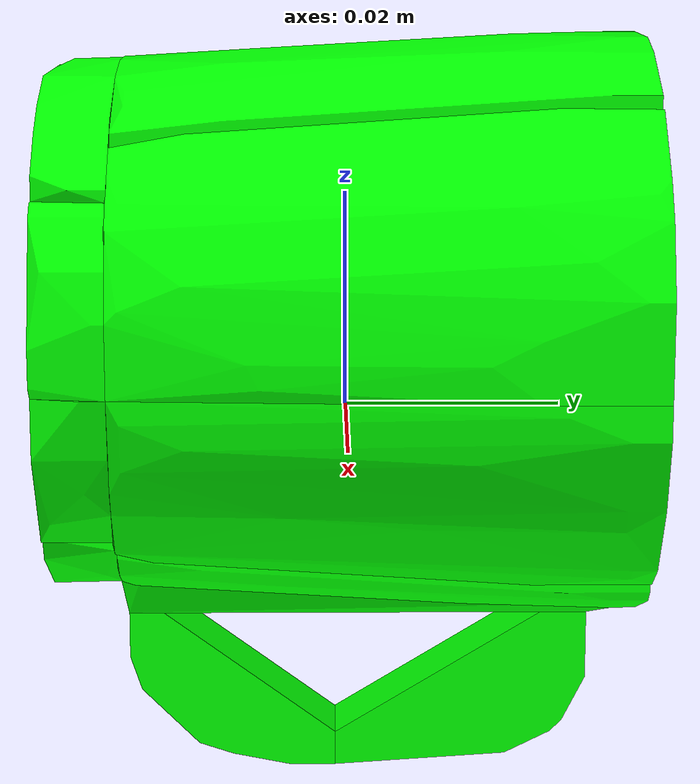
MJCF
<mujoco model="shapenet9-24">
  <asset>
    <mesh file="meshes/shapenet9-24/shapenet9-24_0.stl" name="shapenet9-24_0" scale="0.1 0.1 0.1"/>
    <mesh file="meshes/shapenet9-24/shapenet9-24_1.stl" name="shapenet9-24_1" scale="0.1 0.1 0.1"/>
    <mesh file="meshes/shapenet9-24/shapenet9-24_2.stl" name="shapenet9-24_2" scale="0.1 0.1 0.1"/>
    <mesh file="meshes/shapenet9-24/shapenet9-24_3.stl" name="shapenet9-24_3" scale="0.1 0.1 0.1"/>
    <mesh file="meshes/shapenet9-24/shapenet9-24_4.stl" name="shapenet9-24_4" scale="0.1 0.1 0.1"/>
    <mesh file="meshes/shapenet9-24/shapenet9-24_5.stl" name="shapenet9-24_5" scale="0.1 0.1 0.1"/>
    <mesh file="meshes/shapenet9-24/shapenet9-24_6.stl" name="shapenet9-24_6" scale="0.1 0.1 0.1"/>
    <mesh file="meshes/shapenet9-24/shapenet9-24_7.stl" name="shapenet9-24_7" scale="0.1 0.1 0.1"/>
    <mesh file="meshes/shapenet9-24/shapenet9-24_8.stl" name="shapenet9-24_8" scale="0.1 0.1 0.1"/>
    <mesh file="meshes/shapenet9-24/shapenet9-24_9.stl" name="shapenet9-24_9" scale="0.1 0.1 0.1"/>
    <mesh file="meshes/shapenet9-24/shapenet9-24_10.stl" name="shapenet9-24_10" scale="0.1 0.1 0.1"/>
    <mesh file="meshes/shapenet9-24/shapenet9-24_11.stl" name="shapenet9-24_11" scale="0.1 0.1 0.1"/>
    <mesh file="meshes/shapenet9-24/shapenet9-24_12.stl" name="shapenet9-24_12" scale="0.1 0.1 0.1"/>
    <mesh file="meshes/shapenet9-24/shapenet9-24_13.stl" name="shapenet9-24_13" scale="0.1 0.1 0.1"/>
    <mesh file="meshes/shapenet9-24/shapenet9-24_14.stl" name="shapenet9-24_14" scale="0.1 0.1 0.1"/>
    <mesh file="meshes/shapenet9-24/shapenet9-24_15.stl" name="shapenet9-24_15" scale="0.1 0.1 0.1"/>
    <mesh file="meshes/shapenet9-24/shapenet9-24_16.stl" name="shapenet9-24_16" scale="0.1 0.1 0.1"/>
    <mesh file="meshes/shapenet9-24/shapenet9-24_17.stl" name="shapenet9-24_17" scale="0.1 0.1 0.1"/>
    <mesh file="meshes/shapenet9-24/shapenet9-24_18.stl" name="shapenet9-24_18" scale="0.1 0.1 0.1"/>
    <mesh file="meshes/shapenet9-24/shapenet9-24_19.stl" name="shapenet9-24_19" scale="0.1 0.1 0.1"/>
  </asset>
  <worldbody>
    <body>
      <body name="collision">
        <geom pos="0 0 0" mesh="shapenet9-24_0" type="mesh" solimp="0.998 0.998 0.001" solref="0.001 1" density="100" friction="0.95 0.3 0.1" rgba="0 1 0 1" group="1" condim="4"/>
        <geom pos="0 0 0" mesh="shapenet9-24_1" type="mesh" solimp="0.998 0.998 0.001" solref="0.001 1" density="100" friction="0.95 0.3 0.1" rgba="0 1 0 1" group="1" condim="4"/>
        <geom pos="0 0 0" mesh="shapenet9-24_2" type="mesh" solimp="0.998 0.998 0.001" solref="0.001 1" density="100" friction="0.95 0.3 0.1" rgba="0 1 0 1" group="1" condim="4"/>
        <geom pos="0 0 0" mesh="shapenet9-24_3" type="mesh" solimp="0.998 0.998 0.001" solref="0.001 1" density="100" friction="0.95 0.3 0.1" rgba="0 1 0 1" group="1" condim="4"/>
        <geom pos="0 0 0" mesh="shapenet9-24_4" type="mesh" solimp="0.998 0.998 0.001" solref="0.001 1" density="100" friction="0.95 0.3 0.1" rgba="0 1 0 1" group="1" condim="4"/>
        <geom pos="0 0 0" mesh="shapenet9-24_5" type="mesh" solimp="0.998 0.998 0.001" solref="0.001 1" density="100" friction="0.95 0.3 0.1" rgba="0 1 0 1" group="1" condim="4"/>
        <geom pos="0 0 0" mesh="shapenet9-24_6" type="mesh" solimp="0.998 0.998 0.001" solref="0.001 1" density="100" friction="0.95 0.3 0.1" rgba="0 1 0 1" group="1" condim="4"/>
        <geom pos="0 0 0" mesh="shapenet9-24_7" type="mesh" solimp="0.998 0.998 0.001" solref="0.001 1" density="100" friction="0.95 0.3 0.1" rgba="0 1 0 1" group="1" condim="4"/>
        <geom pos="0 0 0" mesh="shapenet9-24_8" type="mesh" solimp="0.998 0.998 0.001" solref="0.001 1" density="100" friction="0.95 0.3 0.1" rgba="0 1 0 1" group="1" condim="4"/>
        <geom pos="0 0 0" mesh="shapenet9-24_9" type="mesh" solimp="0.998 0.998 0.001" solref="0.001 1" density="100" friction="0.95 0.3 0.1" rgba="0 1 0 1" group="1" condim="4"/>
        <geom pos="0 0 0" mesh="shapenet9-24_10" type="mesh" solimp="0.998 0.998 0.001" solref="0.001 1" density="100" friction="0.95 0.3 0.1" rgba="0 1 0 1" group="1" condim="4"/>
        <geom pos="0 0 0" mesh="shapenet9-24_11" type="mesh" solimp="0.998 0.998 0.001" solref="0.001 1" density="100" friction="0.95 0.3 0.1" rgba="0 1 0 1" group="1" condim="4"/>
        <geom pos="0 0 0" mesh="shapenet9-24_12" type="mesh" solimp="0.998 0.998 0.001" solref="0.001 1" density="100" friction="0.95 0.3 0.1" rgba="0 1 0 1" group="1" condim="4"/>
        <geom pos="0 0 0" mesh="shapenet9-24_13" type="mesh" solimp="0.998 0.998 0.001" solref="0.001 1" density="100" friction="0.95 0.3 0.1" rgba="0 1 0 1" group="1" condim="4"/>
        <geom pos="0 0 0" mesh="shapenet9-24_14" type="mesh" solimp="0.998 0.998 0.001" solref="0.001 1" density="100" friction="0.95 0.3 0.1" rgba="0 1 0 1" group="1" condim="4"/>
        <geom pos="0 0 0" mesh="shapenet9-24_15" type="mesh" solimp="0.998 0.998 0.001" solref="0.001 1" density="100" friction="0.95 0.3 0.1" rgba="0 1 0 1" group="1" condim="4"/>
        <geom pos="0 0 0" mesh="shapenet9-24_16" type="mesh" solimp="0.998 0.998 0.001" solref="0.001 1" density="100" friction="0.95 0.3 0.1" rgba="0 1 0 1" group="1" condim="4"/>
        <geom pos="0 0 0" mesh="shapenet9-24_17" type="mesh" solimp="0.998 0.998 0.001" solref="0.001 1" density="100" friction="0.95 0.3 0.1" rgba="0 1 0 1" group="1" condim="4"/>
        <geom pos="0 0 0" mesh="shapenet9-24_18" type="mesh" solimp="0.998 0.998 0.001" solref="0.001 1" density="100" friction="0.95 0.3 0.1" rgba="0 1 0 1" group="1" condim="4"/>
        <geom pos="0 0 0" mesh="shapenet9-24_19" type="mesh" solimp="0.998 0.998 0.001" solref="0.001 1" density="100" friction="0.95 0.3 0.1" rgba="0 1 0 1" group="1" condim="4"/>
      </body>
      <body name="visual">
        <geom pos="0 0 0" mesh="shapenet9-24_0" type="mesh" rgba="0 1 0 1" conaffinity="0" contype="0" group="0" mass="0.0001"/>
        <geom pos="0 0 0" mesh="shapenet9-24_1" type="mesh" rgba="0 1 0 1" conaffinity="0" contype="0" group="0" mass="0.0001"/>
        <geom pos="0 0 0" mesh="shapenet9-24_2" type="mesh" rgba="0 1 0 1" conaffinity="0" contype="0" group="0" mass="0.0001"/>
        <geom pos="0 0 0" mesh="shapenet9-24_3" type="mesh" rgba="0 1 0 1" conaffinity="0" contype="0" group="0" mass="0.0001"/>
        <geom pos="0 0 0" mesh="shapenet9-24_4" type="mesh" rgba="0 1 0 1" conaffinity="0" contype="0" group="0" mass="0.0001"/>
        <geom pos="0 0 0" mesh="shapenet9-24_5" type="mesh" rgba="0 1 0 1" conaffinity="0" contype="0" group="0" mass="0.0001"/>
        <geom pos="0 0 0" mesh="shapenet9-24_6" type="mesh" rgba="0 1 0 1" conaffinity="0" contype="0" group="0" mass="0.0001"/>
        <geom pos="0 0 0" mesh="shapenet9-24_7" type="mesh" rgba="0 1 0 1" conaffinity="0" contype="0" group="0" mass="0.0001"/>
        <geom pos="0 0 0" mesh="shapenet9-24_8" type="mesh" rgba="0 1 0 1" conaffinity="0" contype="0" group="0" mass="0.0001"/>
        <geom pos="0 0 0" mesh="shapenet9-24_9" type="mesh" rgba="0 1 0 1" conaffinity="0" contype="0" group="0" mass="0.0001"/>
        <geom pos="0 0 0" mesh="shapenet9-24_10" type="mesh" rgba="0 1 0 1" conaffinity="0" contype="0" group="0" mass="0.0001"/>
        <geom pos="0 0 0" mesh="shapenet9-24_11" type="mesh" rgba="0 1 0 1" conaffinity="0" contype="0" group="0" mass="0.0001"/>
        <geom pos="0 0 0" mesh="shapenet9-24_12" type="mesh" rgba="0 1 0 1" conaffinity="0" contype="0" group="0" mass="0.0001"/>
        <geom pos="0 0 0" mesh="shapenet9-24_13" type="mesh" rgba="0 1 0 1" conaffinity="0" contype="0" group="0" mass="0.0001"/>
        <geom pos="0 0 0" mesh="shapenet9-24_14" type="mesh" rgba="0 1 0 1" conaffinity="0" contype="0" group="0" mass="0.0001"/>
        <geom pos="0 0 0" mesh="shapenet9-24_15" type="mesh" rgba="0 1 0 1" conaffinity="0" contype="0" group="0" mass="0.0001"/>
        <geom pos="0 0 0" mesh="shapenet9-24_16" type="mesh" rgba="0 1 0 1" conaffinity="0" contype="0" group="0" mass="0.0001"/>
        <geom pos="0 0 0" mesh="shapenet9-24_17" type="mesh" rgba="0 1 0 1" conaffinity="0" contype="0" group="0" mass="0.0001"/>
        <geom pos="0 0 0" mesh="shapenet9-24_18" type="mesh" rgba="0 1 0 1" conaffinity="0" contype="0" group="0" mass="0.0001"/>
        <geom pos="0 0 0" mesh="shapenet9-24_19" type="mesh" rgba="0 1 0 1" conaffinity="0" contype="0" group="0" mass="0.0001"/>
      </body>
      <site rgba="0 0 0 0" size="0.005" pos="0 0 -0.06" name="bottom_site"/>
      <site rgba="0 0 0 0" size="0.005" pos="0 0 0.04" name="top_site"/>
      <site rgba="0 0 0 0" size="0.005" pos="0.025 0.025 0" name="horizontal_radius_site"/>
    </body>
  </worldbody>
</mujoco>
